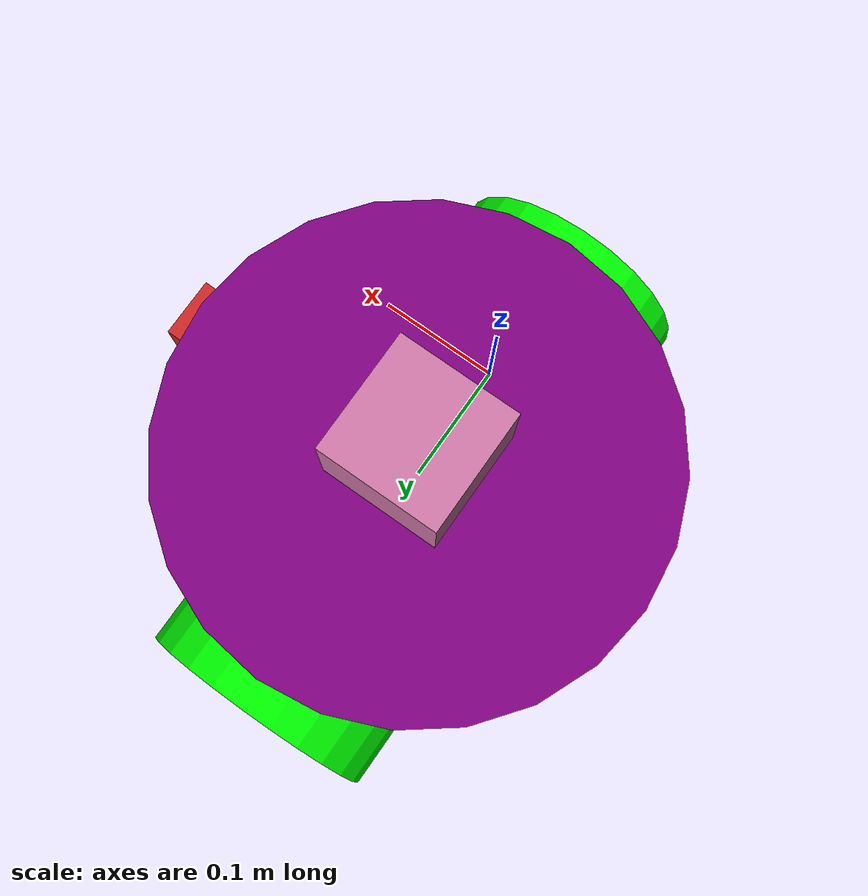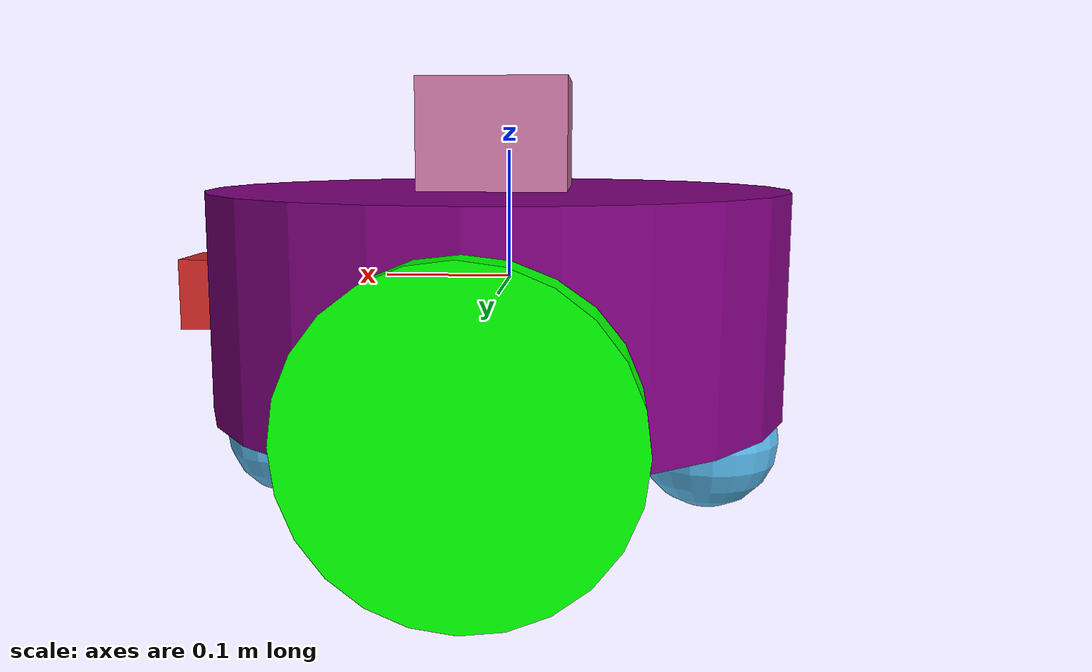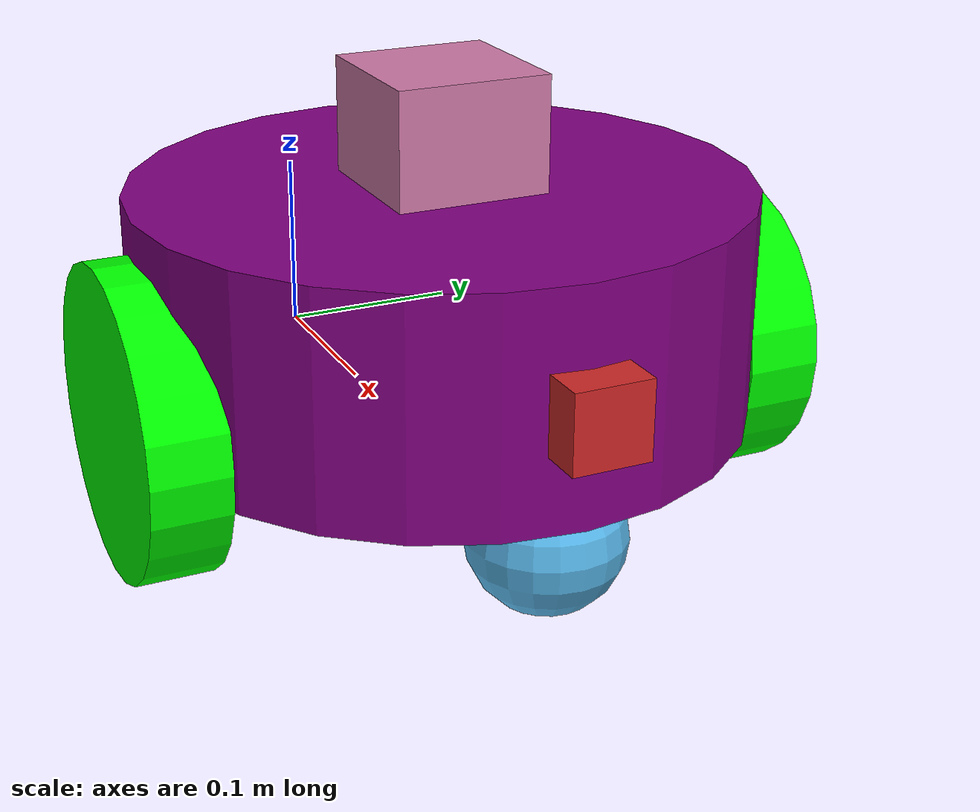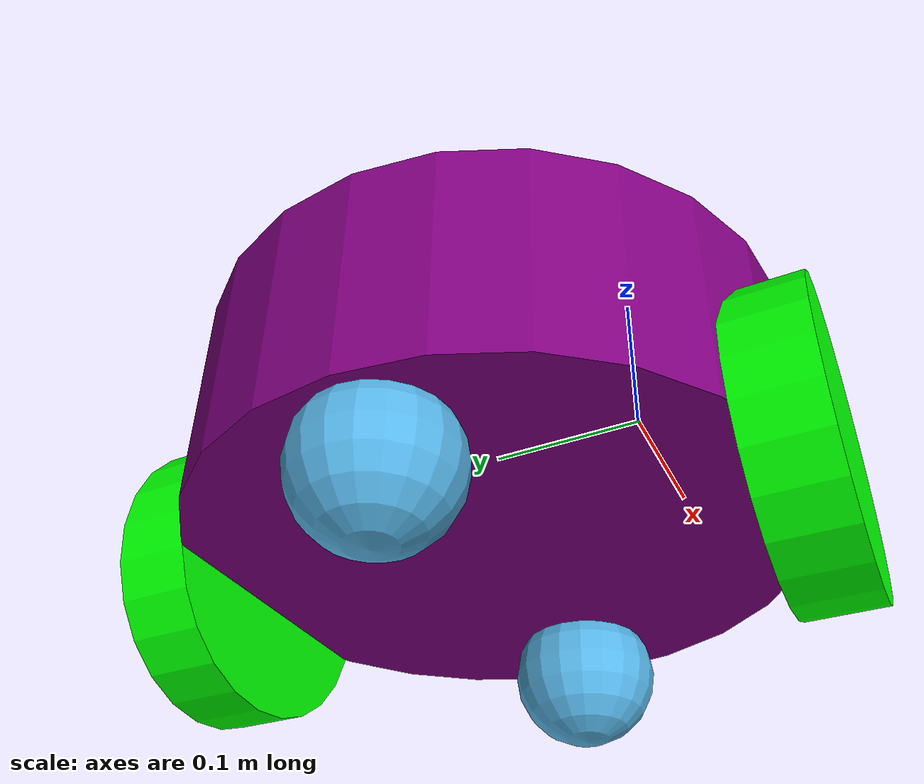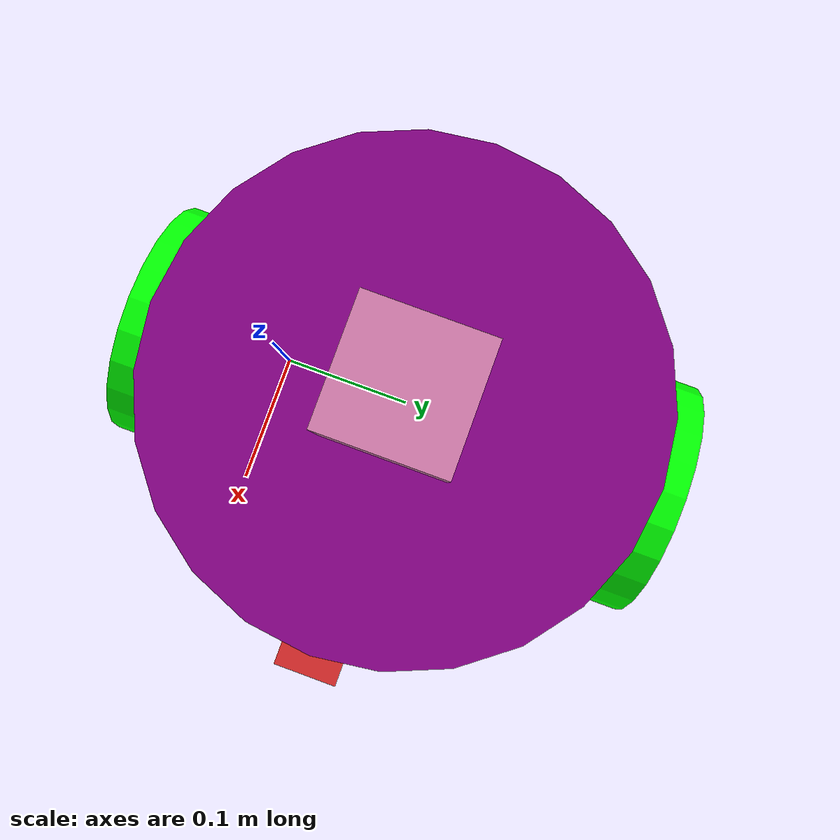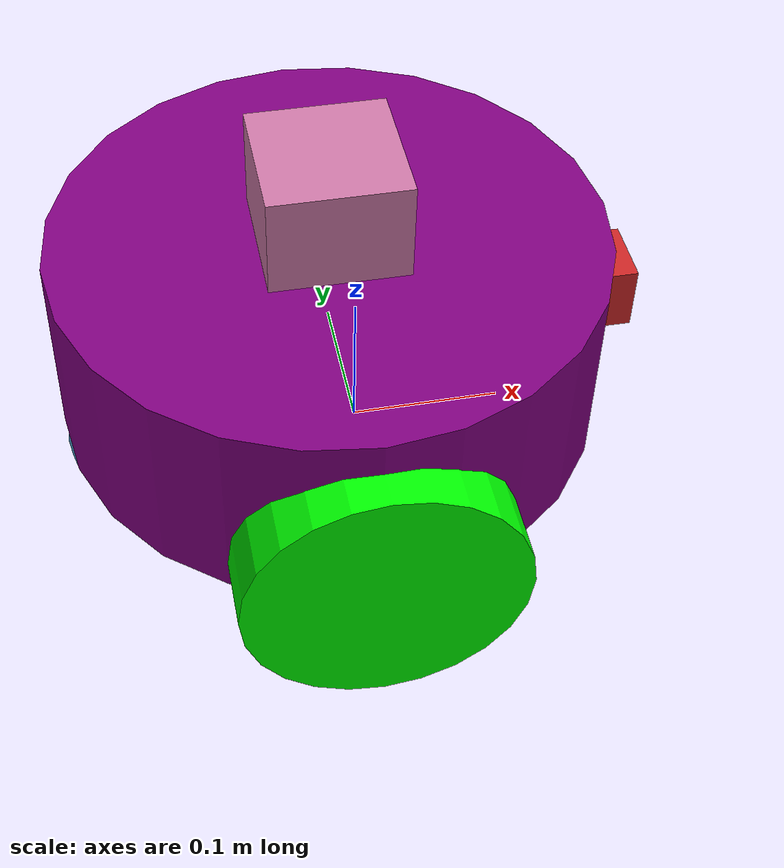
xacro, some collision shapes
<?xml version='1.0'?>

<robot name="ciel_bot" xmlns:xacro="http://www.ros.org/wiki/xacro">
    <xacro:include filename="$(find ciel_bot)/urdf/ciel_bot.gazebo" />

    <link name="robot_footprint"></link>

    <joint name="robot_footprint_joint" type="fixed">
        <origin xyz="0 0.1 0" rpy="0 0 0" />
        <parent link="robot_footprint"/>
        <child link="chassis" />
    </joint>

    <link name='chassis'>
        <pose>0 0 0.0 0 0 0</pose>

        <inertial>
            <mass value="15.0"/>
            <origin xyz="0.0 0 0" rpy=" 0 0 0"/>
            <inertia
                    ixx="0.1" ixy="0" ixz="0"
                    iyy="0.1" iyz="0"
                    izz="0.1"
            />
        </inertial>

        <collision name='collision'>
            <origin xyz="0 0 0" rpy=" 0 0 0"/>
            <geometry>
                <cylinder radius="0.2" length="0.15"/>
            </geometry>
        </collision>

        <visual name='chassis_visual'>
            <origin xyz="0 0 0" rpy=" 0 0 0"/>
            <geometry>
                <cylinder radius="0.2" length="0.15"/>
            </geometry>
            <material name="purple">
                <color rgba="0.5 0 0.5 1"/>
            </material>
        </visual>

        <collision name='back_caster_collision'>
            <origin xyz="-0.15 0 -0.1" rpy=" 0 0 0"/>
            <geometry>
                <sphere radius="0.0499"/>
            </geometry>
        </collision>

        <visual name='back_caster_visual'>
            <origin xyz="-0.15 0 -0.1" rpy=" 0 0 0"/>
            <geometry>
                <sphere radius="0.05"/>
            </geometry>
        </visual>

        <collision name='front_caster_collision'>
            <origin xyz="0.15 0 -0.1" rpy=" 0 0 0"/>
            <geometry>
                <sphere radius="0.0499"/>
            </geometry>
        </collision>

        <visual name='front_caster_visual'>
            <origin xyz="0.15 0 -0.1" rpy=" 0 0 0"/>
            <geometry>
                <sphere radius="0.05"/>
            </geometry>
        </visual>

    </link>

    <!-- *********  Left Wheel ******************************** -->
    <joint name="left_wheel_hinge" type="continuous">
        <origin xyz="0 0.2 -0.05" rpy="0 0 0"/>
        <child link="left_wheel"/>
        <parent link="chassis"/>
        <axis xyz="0 1 0" rpy="0 0 0"/>
        <limit effort="10000" velocity="1000"/>
        <dynamics damping="1.0" friction="1.0"/>
    </joint>

    <link name='left_wheel'>

        <inertial>
            <mass value="5.0"/>
            <origin xyz="0 0 0" rpy="0 1.5707 1.5707"/>
            <inertia
                    ixx="0.1" ixy="0" ixz="0"
                    iyy="0.1" iyz="0"
                    izz="0.1"
            />
        </inertial>

        <visual>
            <geometry>
                <cylinder length="0.05" radius="0.1"/>
            </geometry>
            <origin xyz="0 0 0" rpy="0 1.5707 1.5707"/>
            <material name="green">
                <color rgba="0 1 0 1"/>
            </material>
        </visual>
        <collision>
            <geometry>
                <cylinder length="0.05" radius="0.1"/>
            </geometry>
            <origin xyz="0 0 0" rpy="0 1.5707 1.5707"/>
        </collision>
    </link>

    <!-- *********  Right Wheel ******************************** -->
    <joint name="right_wheel_hinge" type="continuous">
        <origin xyz="0 -0.2 -0.05" rpy="0 0 0"/>
        <child link="right_wheel"/>
        <parent link="chassis"/>
        <axis xyz="0 1 0" rpy="0 0 0"/>
        <limit effort="10000" velocity="1000"/>
        <dynamics damping="1.0" friction="1.0"/>
    </joint>

    <link name='right_wheel'>

        <inertial>
            <mass value="5.0"/>
            <origin xyz="0 0 0" rpy="0 1.5707 1.5707"/>
            <inertia
                    ixx="0.1" ixy="0" ixz="0"
                    iyy="0.1" iyz="0"
                    izz="0.1"
            />
        </inertial>

        <visual>
            <geometry>
                <cylinder length="0.05" radius="0.1"/>
            </geometry>
            <origin xyz="0 0 0" rpy="0 1.5707 1.5707"/>
            <material name="green">
                <color rgba="0 1 0 1"/>
            </material>
        </visual>
        <collision>
            <geometry>
                <cylinder length="0.05" radius="0.1"/>
            </geometry>
            <origin xyz="0 0 0" rpy="0 1.5707 1.5707"/>
        </collision>
    </link>

    <!-- *********  Camera ******************************** -->
    <link name="camera">
        <inertial>
            <mass value="0.1"/>
            <origin xyz="0.0 0 0" rpy=" 0 0 0"/>
            <inertia
                    ixx="1e-6" ixy="0" ixz="0"
                    iyy="1e-6" iyz="0"
                    izz="1e-6"
            />
        </inertial>

        <collision name='collision'>
            <origin xyz="0.0 0 0" rpy=" 0 0 0"/>
            <geometry>
                <box size="0.05 0.05 0.05"/>
            </geometry>
        </collision>

        <visual name='camera_visual'>
            <origin xyz="0.0 0 0" rpy=" 0 0 0"/>
            <geometry>
                <box size="0.05 0.05 0.05"/>
            </geometry>
        </visual>
    </link>

    <joint type="fixed" name="camera_joint">
        <origin xyz="0.2 0 0" rpy="0 0 0"/>
        <child link="camera"/>
        <parent link="chassis"/>
        <axis xyz="0 1 0" rpy="0 0 0"/>
        <limit effort="10000" velocity="1000"/>
        <dynamics damping="1.0" friction="1.0"/>
    </joint>

    <link name="camera_rgbd_frame"></link>

    <joint name="camera_rgbd_joint" type="fixed">
        <origin xyz="0 0 0" rpy="-${pi/2} 0 -${pi/2}"/>
        <parent link="camera"/>
        <child link="camera_rgbd_frame"/>
    </joint>

    <!-- *********  Laser Rangefinder ******************************** -->
    <joint type="fixed" name="hokuyo_joint">
        <origin xyz="0 0 0.1" rpy="0 0 0"/>
        <child link="hokuyo"/>
        <parent link="chassis"/>
    </joint>

    <link name="hokuyo">

        <inertial>
            <mass value="0.1"/>
            <origin xyz="0 0 0" rpy="0 0 0"/>
            <inertia
                    ixx="1e-6" ixy="0" ixz="0"
                    iyy="1e-6" iyz="0"
                    izz="1e-6"
            />
        </inertial>
        <visual>
            <geometry>
                <mesh filename="package://ciel_bot/meshes/hokuyo.dae"/>
            </geometry>
            <origin xyz="0 0 0" rpy="0 0 0"/>
        </visual>
        <collision>
            <geometry>
                <box size="0.1 0.1 0.1"/>
            </geometry>
            <origin xyz="0 0 0" rpy="0 0 0"/>
        </collision>
    </link>

</robot>
